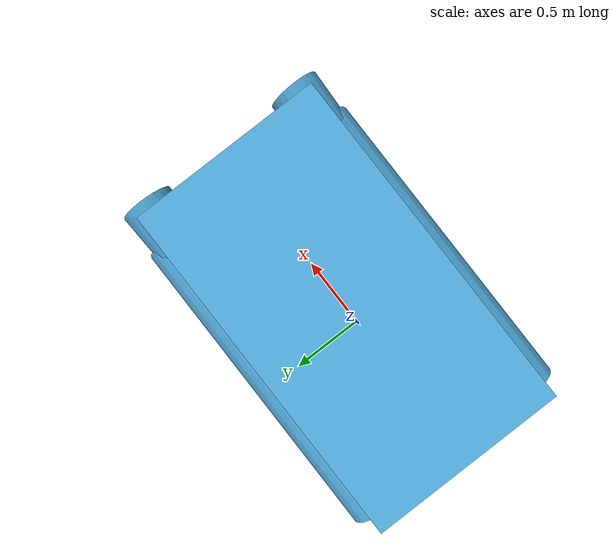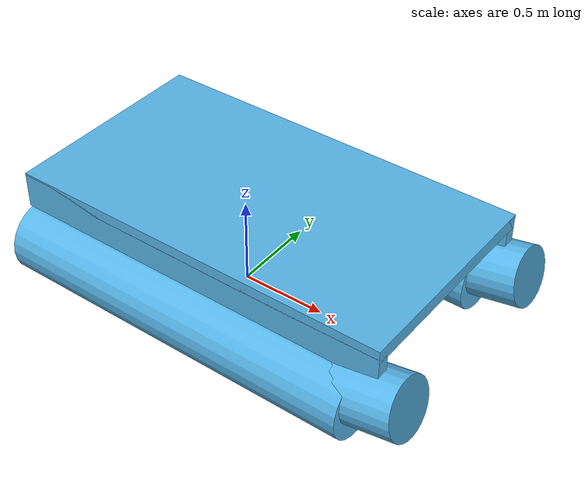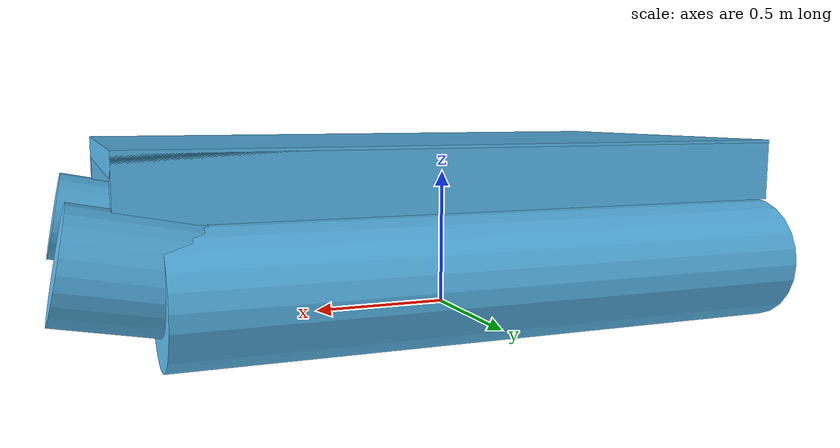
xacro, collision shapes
<?xml version="1.0"?>
<robot xmlns:xacro="http://ros.org/wiki/xacro" name="WAM-V">
  <xacro:arg name="namespace" default="wamv"/>
  <xacro:property name="namespace" value="$(arg namespace)" scope="global" />
  <xacro:macro name="main_collisions" params="prefix reflect:=1">

    <!-- Main float -->
    <collision name="${prefix}_float">
      <origin xyz="0.0745 ${0.575*reflect} 0.21" rpy="${0*reflect} 1.57 0" />
      <geometry>
        <cylinder length="2.1" radius="0.21" />
      </geometry>
    </collision>

    <collision name="${prefix}_front_float">
      <origin xyz="1 ${0.575*reflect} 0.25" rpy="${0*reflect} 1.38 0" />
      <geometry>
        <cylinder length="0.8" radius="0.17" />
      </geometry>
    </collision>

    <!-- Beam -->
    <collision name="${prefix}_beam">
      <origin xyz="0.13 ${0.585*reflect} 0.52" rpy="${0*reflect} 0 0" />
      <geometry>
        <box size="2.23 0.07 0.2" />
      </geometry>
    </collision>
  </xacro:macro>

  <!-- base link -->
  <link name="${namespace}/base_link">
  </link>

  <joint name="${namespace}/dummy_joint" type = "fixed">
    <parent link="${namespace}/base_link"/>
    <child link="${namespace}/dummy_link"/>
  </joint>

  <link name="${namespace}/dummy_link">
    <visual>
      <origin xyz="-1.5 0.96 -0.0" rpy="1.57 0 0" />
      <geometry>
        <mesh filename="package://wamv_description/models/pontoon-base/mesh/FrameAndDecking.dae" scale="0.026 0.026 0.026"/>
      </geometry>
    </visual>

    <!-- Left base collisions -->
    <xacro:main_collisions prefix="left" reflect="1" />

    <!-- Right side collisions -->
    <xacro:main_collisions prefix="right" reflect="-1" />

     <!-- Top base -->
    <collision name="top_base">
      <origin xyz="0.13 -0 0.59" rpy="0 0 0" />
      <geometry>
        <box size="2.23 1.24 0.08" />
      </geometry>
    </collision>

    <inertial>
      <!-- From WAM-V spec sheet -->
      <mass value="180.0"/>
      <inertia ixx="120.0" ixy="0.0" ixz="0.0" iyy="393" iyz="0.0" izz="446.0"/>
    </inertial>
  </link>

</robot>
